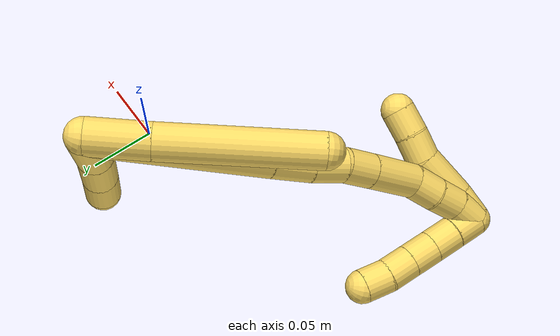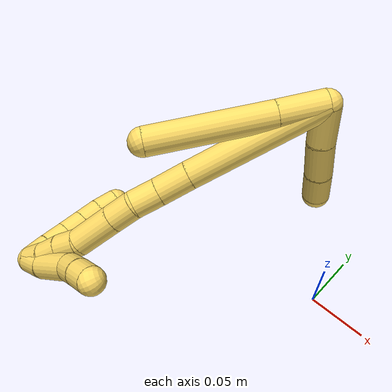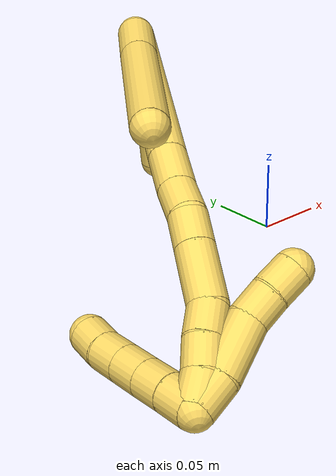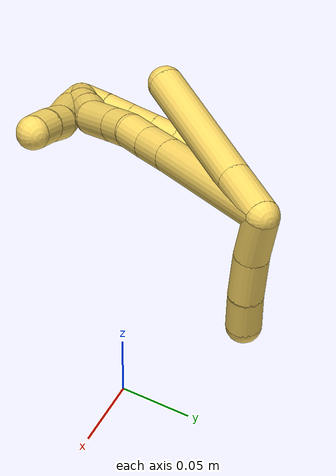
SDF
<sdf version="1.7">
 <world name="default">
  <model name="5">
   <static>0</static>
   <link name="5">
    <collision name="collision-cylinder-e_1_2_8">
     <pose>-0.001874 -0.004977 0.020131 0.242371 -0.090128 -0.010983</pose>
     <geometry><cylinder><radius>0.0125</radius><length>0.041643</length></cylinder></geometry>
     <surface>
      <friction><ode><mu>1.16</mu><mu2>1.16</mu2><slip1>0</slip1><slip2>0</slip2></ode></friction>
      <contact><ode><kp>1e+06</kp><kd>1</kd><max_vel>0</max_vel><min_depth>0.001</min_depth></ode></contact>
     </surface>
    </collision>
    <visual name="visual-cylinder-e_1_2_8">
     <pose>-0.001874 -0.004977 0.020131 0.242371 -0.090128 -0.010983</pose>
     <geometry><cylinder><radius>0.0125</radius><length>0.041643</length></cylinder></geometry>
     <material><ambient>1 0.858824 0.4 1</ambient></material>
    </visual>
    <collision name="collision-cylinder-e_2_8_6">
     <pose>-0.009902 -0.023683 0.092309 0.257896 -0.113838 -0.014777</pose>
     <geometry><cylinder><radius>0.0125</radius><length>0.108357</length></cylinder></geometry>
     <surface>
      <friction><ode><mu>1.16</mu><mu2>1.16</mu2><slip1>0</slip1><slip2>0</slip2></ode></friction>
      <contact><ode><kp>1e+06</kp><kd>1</kd><max_vel>0</max_vel><min_depth>0.001</min_depth></ode></contact>
     </surface>
    </collision>
    <visual name="visual-cylinder-e_2_8_6">
     <pose>-0.009902 -0.023683 0.092309 0.257896 -0.113838 -0.014777</pose>
     <geometry><cylinder><radius>0.0125</radius><length>0.108357</length></cylinder></geometry>
     <material><ambient>1 0.858824 0.4 1</ambient></material>
    </visual>
    <collision name="collision-cylinder-e_1_2_9">
     <pose>0.009062 0.01461 0.006668 -1.14262 0.513748 -0.334553</pose>
     <geometry><cylinder><radius>0.0125</radius><length>0.036879</length></cylinder></geometry>
     <surface>
      <friction><ode><mu>1.16</mu><mu2>1.16</mu2><slip1>0</slip1><slip2>0</slip2></ode></friction>
      <contact><ode><kp>1e+06</kp><kd>1</kd><max_vel>0</max_vel><min_depth>0.001</min_depth></ode></contact>
     </surface>
    </collision>
    <visual name="visual-cylinder-e_1_2_9">
     <pose>0.009062 0.01461 0.006668 -1.14262 0.513748 -0.334553</pose>
     <geometry><cylinder><radius>0.0125</radius><length>0.036879</length></cylinder></geometry>
     <material><ambient>1 0.858824 0.4 1</ambient></material>
    </visual>
    <collision name="collision-cylinder-e_2_9_10">
     <pose>0.02759 0.043234 0.018227 -1.23503 0.567692 -0.408562</pose>
     <geometry><cylinder><radius>0.0125</radius><length>0.035211</length></cylinder></geometry>
     <surface>
      <friction><ode><mu>1.16</mu><mu2>1.16</mu2><slip1>0</slip1><slip2>0</slip2></ode></friction>
      <contact><ode><kp>1e+06</kp><kd>1</kd><max_vel>0</max_vel><min_depth>0.001</min_depth></ode></contact>
     </surface>
    </collision>
    <visual name="visual-cylinder-e_2_9_10">
     <pose>0.02759 0.043234 0.018227 -1.23503 0.567692 -0.408562</pose>
     <geometry><cylinder><radius>0.0125</radius><length>0.035211</length></cylinder></geometry>
     <material><ambient>1 0.858824 0.4 1</ambient></material>
    </visual>
    <collision name="collision-cylinder-e_3_10_5">
     <pose>0.045341 0.067789 0.026994 -1.21839 0.635616 -0.451227</pose>
     <geometry><cylinder><radius>0.0125</radius><length>0.027909</length></cylinder></geometry>
     <surface>
      <friction><ode><mu>1.16</mu><mu2>1.16</mu2><slip1>0</slip1><slip2>0</slip2></ode></friction>
      <contact><ode><kp>1e+06</kp><kd>1</kd><max_vel>0</max_vel><min_depth>0.001</min_depth></ode></contact>
     </surface>
    </collision>
    <visual name="visual-cylinder-e_3_10_5">
     <pose>0.045341 0.067789 0.026994 -1.21839 0.635616 -0.451227</pose>
     <geometry><cylinder><radius>0.0125</radius><length>0.027909</length></cylinder></geometry>
     <material><ambient>1 0.858824 0.4 1</ambient></material>
    </visual>
    <collision name="collision-cylinder-e_1_2_11">
     <pose>0.000943 0.002361 0.062223 -0.037933 0.015141 -0.000287</pose>
     <geometry><cylinder><radius>0.0125</radius><length>0.124551</length></cylinder></geometry>
     <surface>
      <friction><ode><mu>1.16</mu><mu2>1.16</mu2><slip1>0</slip1><slip2>0</slip2></ode></friction>
      <contact><ode><kp>1e+06</kp><kd>1</kd><max_vel>0</max_vel><min_depth>0.001</min_depth></ode></contact>
     </surface>
    </collision>
    <visual name="visual-cylinder-e_1_2_11">
     <pose>0.000943 0.002361 0.062223 -0.037933 0.015141 -0.000287</pose>
     <geometry><cylinder><radius>0.0125</radius><length>0.124551</length></cylinder></geometry>
     <material><ambient>1 0.858824 0.4 1</ambient></material>
    </visual>
    <collision name="collision-cylinder-e_2_11_12">
     <pose>0.001967 0.005547 0.139119 -0.056105 0.005517 -0.000155</pose>
     <geometry><cylinder><radius>0.0125</radius><length>0.029391</length></cylinder></geometry>
     <surface>
      <friction><ode><mu>1.16</mu><mu2>1.16</mu2><slip1>0</slip1><slip2>0</slip2></ode></friction>
      <contact><ode><kp>1e+06</kp><kd>1</kd><max_vel>0</max_vel><min_depth>0.001</min_depth></ode></contact>
     </surface>
    </collision>
    <visual name="visual-cylinder-e_2_11_12">
     <pose>0.001967 0.005547 0.139119 -0.056105 0.005517 -0.000155</pose>
     <geometry><cylinder><radius>0.0125</radius><length>0.029391</length></cylinder></geometry>
     <material><ambient>1 0.858824 0.4 1</ambient></material>
    </visual>
    <collision name="collision-cylinder-e_3_12_13">
     <pose>0.000887 0.006631 0.165643 -0.021941 -0.097612 0.001072</pose>
     <geometry><cylinder><radius>0.0125</radius><length>0.023823</length></cylinder></geometry>
     <surface>
      <friction><ode><mu>1.16</mu><mu2>1.16</mu2><slip1>0</slip1><slip2>0</slip2></ode></friction>
      <contact><ode><kp>1e+06</kp><kd>1</kd><max_vel>0</max_vel><min_depth>0.001</min_depth></ode></contact>
     </surface>
    </collision>
    <visual name="visual-cylinder-e_3_12_13">
     <pose>0.000887 0.006631 0.165643 -0.021941 -0.097612 0.001072</pose>
     <geometry><cylinder><radius>0.0125</radius><length>0.023823</length></cylinder></geometry>
     <material><ambient>1 0.858824 0.4 1</ambient></material>
    </visual>
    <collision name="collision-cylinder-e_4_13_14">
     <pose>0.001037 0.00868 0.188509 -0.160975 0.116927 -0.009442</pose>
     <geometry><cylinder><radius>0.0125</radius><length>0.02247</length></cylinder></geometry>
     <surface>
      <friction><ode><mu>1.16</mu><mu2>1.16</mu2><slip1>0</slip1><slip2>0</slip2></ode></friction>
      <contact><ode><kp>1e+06</kp><kd>1</kd><max_vel>0</max_vel><min_depth>0.001</min_depth></ode></contact>
     </surface>
    </collision>
    <visual name="visual-cylinder-e_4_13_14">
     <pose>0.001037 0.00868 0.188509 -0.160975 0.116927 -0.009442</pose>
     <geometry><cylinder><radius>0.0125</radius><length>0.02247</length></cylinder></geometry>
     <material><ambient>1 0.858824 0.4 1</ambient></material>
    </visual>
    <collision name="collision-cylinder-e_5_14_15">
     <pose>0.004767 0.013811 0.218396 -0.175295 0.125588 -0.01105</pose>
     <geometry><cylinder><radius>0.0125</radius><length>0.038638</length></cylinder></geometry>
     <surface>
      <friction><ode><mu>1.16</mu><mu2>1.16</mu2><slip1>0</slip1><slip2>0</slip2></ode></friction>
      <contact><ode><kp>1e+06</kp><kd>1</kd><max_vel>0</max_vel><min_depth>0.001</min_depth></ode></contact>
     </surface>
    </collision>
    <visual name="visual-cylinder-e_5_14_15">
     <pose>0.004767 0.013811 0.218396 -0.175295 0.125588 -0.01105</pose>
     <geometry><cylinder><radius>0.0125</radius><length>0.038638</length></cylinder></geometry>
     <material><ambient>1 0.858824 0.4 1</ambient></material>
    </visual>
    <collision name="collision-cylinder-e_6_15_16">
     <pose>0.010861 0.016539 0.24696 0.063275 0.361683 0.011573</pose>
     <geometry><cylinder><radius>0.0125</radius><length>0.020765</length></cylinder></geometry>
     <surface>
      <friction><ode><mu>1.16</mu><mu2>1.16</mu2><slip1>0</slip1><slip2>0</slip2></ode></friction>
      <contact><ode><kp>1e+06</kp><kd>1</kd><max_vel>0</max_vel><min_depth>0.001</min_depth></ode></contact>
     </surface>
    </collision>
    <visual name="visual-cylinder-e_6_15_16">
     <pose>0.010861 0.016539 0.24696 0.063275 0.361683 0.011573</pose>
     <geometry><cylinder><radius>0.0125</radius><length>0.020765</length></cylinder></geometry>
     <material><ambient>1 0.858824 0.4 1</ambient></material>
    </visual>
    <collision name="collision-cylinder-e_7_16_17">
     <pose>0.017696 0.016429 0.26629 -0.052184 0.316499 -0.00833</pose>
     <geometry><cylinder><radius>0.0125</radius><length>0.020311</length></cylinder></geometry>
     <surface>
      <friction><ode><mu>1.16</mu><mu2>1.16</mu2><slip1>0</slip1><slip2>0</slip2></ode></friction>
      <contact><ode><kp>1e+06</kp><kd>1</kd><max_vel>0</max_vel><min_depth>0.001</min_depth></ode></contact>
     </surface>
    </collision>
    <visual name="visual-cylinder-e_7_16_17">
     <pose>0.017696 0.016429 0.26629 -0.052184 0.316499 -0.00833</pose>
     <geometry><cylinder><radius>0.0125</radius><length>0.020311</length></cylinder></geometry>
     <material><ambient>1 0.858824 0.4 1</ambient></material>
    </visual>
    <collision name="collision-cylinder-e_8_17_1">
     <pose>0.025666 0.01664 0.28472 0.033265 0.500356 0.008501</pose>
     <geometry><cylinder><radius>0.0125</radius><length>0.020051</length></cylinder></geometry>
     <surface>
      <friction><ode><mu>1.16</mu><mu2>1.16</mu2><slip1>0</slip1><slip2>0</slip2></ode></friction>
      <contact><ode><kp>1e+06</kp><kd>1</kd><max_vel>0</max_vel><min_depth>0.001</min_depth></ode></contact>
     </surface>
    </collision>
    <visual name="visual-cylinder-e_8_17_1">
     <pose>0.025666 0.01664 0.28472 0.033265 0.500356 0.008501</pose>
     <geometry><cylinder><radius>0.0125</radius><length>0.020051</length></cylinder></geometry>
     <material><ambient>1 0.858824 0.4 1</ambient></material>
    </visual>
    <collision name="collision-cylinder-e_1_1_18">
     <pose>0.036196 0.015118 0.285401 2.99123 0.608884 2.67101</pose>
     <geometry><cylinder><radius>0.0125</radius><length>0.02</length></cylinder></geometry>
     <surface>
      <friction><ode><mu>1.16</mu><mu2>1.16</mu2><slip1>0</slip1><slip2>0</slip2></ode></friction>
      <contact><ode><kp>1e+06</kp><kd>1</kd><max_vel>0</max_vel><min_depth>0.001</min_depth></ode></contact>
     </surface>
    </collision>
    <visual name="visual-cylinder-e_1_1_18">
     <pose>0.036196 0.015118 0.285401 2.99123 0.608884 2.67101</pose>
     <geometry><cylinder><radius>0.0125</radius><length>0.02</length></cylinder></geometry>
     <material><ambient>1 0.858824 0.4 1</ambient></material>
    </visual>
    <collision name="collision-cylinder-e_2_18_19">
     <pose>0.047792 0.013022 0.269247 3.03421 0.628237 2.81371</pose>
     <geometry><cylinder><radius>0.0125</radius><length>0.02</length></cylinder></geometry>
     <surface>
      <friction><ode><mu>1.16</mu><mu2>1.16</mu2><slip1>0</slip1><slip2>0</slip2></ode></friction>
      <contact><ode><kp>1e+06</kp><kd>1</kd><max_vel>0</max_vel><min_depth>0.001</min_depth></ode></contact>
     </surface>
    </collision>
    <visual name="visual-cylinder-e_2_18_19">
     <pose>0.047792 0.013022 0.269247 3.03421 0.628237 2.81371</pose>
     <geometry><cylinder><radius>0.0125</radius><length>0.02</length></cylinder></geometry>
     <material><ambient>1 0.858824 0.4 1</ambient></material>
    </visual>
    <collision name="collision-cylinder-e_3_19_20">
     <pose>0.059459 0.011205 0.253105 3.02475 0.617431 2.77882</pose>
     <geometry><cylinder><radius>0.0125</radius><length>0.02</length></cylinder></geometry>
     <surface>
      <friction><ode><mu>1.16</mu><mu2>1.16</mu2><slip1>0</slip1><slip2>0</slip2></ode></friction>
      <contact><ode><kp>1e+06</kp><kd>1</kd><max_vel>0</max_vel><min_depth>0.001</min_depth></ode></contact>
     </surface>
    </collision>
    <visual name="visual-cylinder-e_3_19_20">
     <pose>0.059459 0.011205 0.253105 3.02475 0.617431 2.77882</pose>
     <geometry><cylinder><radius>0.0125</radius><length>0.02</length></cylinder></geometry>
     <material><ambient>1 0.858824 0.4 1</ambient></material>
    </visual>
    <collision name="collision-cylinder-e_4_20_21">
     <pose>0.071038 0.009303 0.236909 3.02466 0.617464 2.77857</pose>
     <geometry><cylinder><radius>0.0125</radius><length>0.02</length></cylinder></geometry>
     <surface>
      <friction><ode><mu>1.16</mu><mu2>1.16</mu2><slip1>0</slip1><slip2>0</slip2></ode></friction>
      <contact><ode><kp>1e+06</kp><kd>1</kd><max_vel>0</max_vel><min_depth>0.001</min_depth></ode></contact>
     </surface>
    </collision>
    <visual name="visual-cylinder-e_4_20_21">
     <pose>0.071038 0.009303 0.236909 3.02466 0.617464 2.77857</pose>
     <geometry><cylinder><radius>0.0125</radius><length>0.02</length></cylinder></geometry>
     <material><ambient>1 0.858824 0.4 1</ambient></material>
    </visual>
    <collision name="collision-cylinder-e_5_21_4">
     <pose>0.081437 0.008116 0.21994 3.11506 0.479013 3.03303</pose>
     <geometry><cylinder><radius>0.0125</radius><length>0.02</length></cylinder></geometry>
     <surface>
      <friction><ode><mu>1.16</mu><mu2>1.16</mu2><slip1>0</slip1><slip2>0</slip2></ode></friction>
      <contact><ode><kp>1e+06</kp><kd>1</kd><max_vel>0</max_vel><min_depth>0.001</min_depth></ode></contact>
     </surface>
    </collision>
    <visual name="visual-cylinder-e_5_21_4">
     <pose>0.081437 0.008116 0.21994 3.11506 0.479013 3.03303</pose>
     <geometry><cylinder><radius>0.0125</radius><length>0.02</length></cylinder></geometry>
     <material><ambient>1 0.858824 0.4 1</ambient></material>
    </visual>
    <collision name="collision-cylinder-e_1_1_22">
     <pose>0.022976 0.020198 0.286183 -2.65772 -0.736077 2.00304</pose>
     <geometry><cylinder><radius>0.0125</radius><length>0.022342</length></cylinder></geometry>
     <surface>
      <friction><ode><mu>1.16</mu><mu2>1.16</mu2><slip1>0</slip1><slip2>0</slip2></ode></friction>
      <contact><ode><kp>1e+06</kp><kd>1</kd><max_vel>0</max_vel><min_depth>0.001</min_depth></ode></contact>
     </surface>
    </collision>
    <visual name="visual-cylinder-e_1_1_22">
     <pose>0.022976 0.020198 0.286183 -2.65772 -0.736077 2.00304</pose>
     <geometry><cylinder><radius>0.0125</radius><length>0.022342</length></cylinder></geometry>
     <material><ambient>1 0.858824 0.4 1</ambient></material>
    </visual>
    <collision name="collision-cylinder-e_2_22_23">
     <pose>0.004135 0.02758 0.264271 -2.90408 -0.647226 2.45802</pose>
     <geometry><cylinder><radius>0.0125</radius><length>0.037616</length></cylinder></geometry>
     <surface>
      <friction><ode><mu>1.16</mu><mu2>1.16</mu2><slip1>0</slip1><slip2>0</slip2></ode></friction>
      <contact><ode><kp>1e+06</kp><kd>1</kd><max_vel>0</max_vel><min_depth>0.001</min_depth></ode></contact>
     </surface>
    </collision>
    <visual name="visual-cylinder-e_2_22_23">
     <pose>0.004135 0.02758 0.264271 -2.90408 -0.647226 2.45802</pose>
     <geometry><cylinder><radius>0.0125</radius><length>0.037616</length></cylinder></geometry>
     <material><ambient>1 0.858824 0.4 1</ambient></material>
    </visual>
    <collision name="collision-cylinder-e_3_23_24">
     <pose>-0.015235 0.033331 0.244137 -2.76105 -0.930754 2.40912</pose>
     <geometry><cylinder><radius>0.0125</radius><length>0.020021</length></cylinder></geometry>
     <surface>
      <friction><ode><mu>1.16</mu><mu2>1.16</mu2><slip1>0</slip1><slip2>0</slip2></ode></friction>
      <contact><ode><kp>1e+06</kp><kd>1</kd><max_vel>0</max_vel><min_depth>0.001</min_depth></ode></contact>
     </surface>
    </collision>
    <visual name="visual-cylinder-e_3_23_24">
     <pose>-0.015235 0.033331 0.244137 -2.76105 -0.930754 2.40912</pose>
     <geometry><cylinder><radius>0.0125</radius><length>0.020021</length></cylinder></geometry>
     <material><ambient>1 0.858824 0.4 1</ambient></material>
    </visual>
    <collision name="collision-cylinder-e_4_24_3">
     <pose>-0.030912 0.038779 0.232992 -2.61833 -0.86956 2.09556</pose>
     <geometry><cylinder><radius>0.0125</radius><length>0.020021</length></cylinder></geometry>
     <surface>
      <friction><ode><mu>1.16</mu><mu2>1.16</mu2><slip1>0</slip1><slip2>0</slip2></ode></friction>
      <contact><ode><kp>1e+06</kp><kd>1</kd><max_vel>0</max_vel><min_depth>0.001</min_depth></ode></contact>
     </surface>
    </collision>
    <visual name="visual-cylinder-e_4_24_3">
     <pose>-0.030912 0.038779 0.232992 -2.61833 -0.86956 2.09556</pose>
     <geometry><cylinder><radius>0.0125</radius><length>0.020021</length></cylinder></geometry>
     <material><ambient>1 0.858824 0.4 1</ambient></material>
    </visual>
    <collision name="collision-sphere-3">
     <pose>-0.038561 0.042006 0.227398 0 -0 0</pose>
     <geometry><sphere><radius>0.0125</radius></sphere></geometry>
     <surface>
      <friction><ode><mu>1.16</mu><mu2>1.16</mu2><slip1>0</slip1><slip2>0</slip2></ode></friction>
      <contact><ode><kp>1e+06</kp><kd>1</kd><max_vel>0</max_vel><min_depth>0.001</min_depth></ode></contact>
     </surface>
    </collision>
    <visual name="visual-sphere-3">
     <pose>-0.038561 0.042006 0.227398 0 -0 0</pose>
     <geometry><sphere><radius>0.0125</radius></sphere></geometry>
     <material><ambient>1 0.858824 0.4 1</ambient></material>
    </visual>
    <collision name="collision-sphere-24">
     <pose>-0.023264 0.035552 0.238586 0 -0 0</pose>
     <geometry><sphere><radius>0.0125</radius></sphere></geometry>
     <surface>
      <friction><ode><mu>1.16</mu><mu2>1.16</mu2><slip1>0</slip1><slip2>0</slip2></ode></friction>
      <contact><ode><kp>1e+06</kp><kd>1</kd><max_vel>0</max_vel><min_depth>0.001</min_depth></ode></contact>
     </surface>
    </collision>
    <visual name="visual-sphere-24">
     <pose>-0.023264 0.035552 0.238586 0 -0 0</pose>
     <geometry><sphere><radius>0.0125</radius></sphere></geometry>
     <material><ambient>1 0.858824 0.4 1</ambient></material>
    </visual>
    <collision name="collision-sphere-23">
     <pose>-0.007206 0.031111 0.249688 0 -0 0</pose>
     <geometry><sphere><radius>0.0125</radius></sphere></geometry>
     <surface>
      <friction><ode><mu>1.16</mu><mu2>1.16</mu2><slip1>0</slip1><slip2>0</slip2></ode></friction>
      <contact><ode><kp>1e+06</kp><kd>1</kd><max_vel>0</max_vel><min_depth>0.001</min_depth></ode></contact>
     </surface>
    </collision>
    <visual name="visual-sphere-23">
     <pose>-0.007206 0.031111 0.249688 0 -0 0</pose>
     <geometry><sphere><radius>0.0125</radius></sphere></geometry>
     <material><ambient>1 0.858824 0.4 1</ambient></material>
    </visual>
    <collision name="collision-sphere-22">
     <pose>0.015476 0.02405 0.278854 0 -0 0</pose>
     <geometry><sphere><radius>0.0125</radius></sphere></geometry>
     <surface>
      <friction><ode><mu>1.16</mu><mu2>1.16</mu2><slip1>0</slip1><slip2>0</slip2></ode></friction>
      <contact><ode><kp>1e+06</kp><kd>1</kd><max_vel>0</max_vel><min_depth>0.001</min_depth></ode></contact>
     </surface>
    </collision>
    <visual name="visual-sphere-22">
     <pose>0.015476 0.02405 0.278854 0 -0 0</pose>
     <geometry><sphere><radius>0.0125</radius></sphere></geometry>
     <material><ambient>1 0.858824 0.4 1</ambient></material>
    </visual>
    <collision name="collision-sphere-4">
     <pose>0.086046 0.007881 0.211068 0 -0 0</pose>
     <geometry><sphere><radius>0.0125</radius></sphere></geometry>
     <surface>
      <friction><ode><mu>1.16</mu><mu2>1.16</mu2><slip1>0</slip1><slip2>0</slip2></ode></friction>
      <contact><ode><kp>1e+06</kp><kd>1</kd><max_vel>0</max_vel><min_depth>0.001</min_depth></ode></contact>
     </surface>
    </collision>
    <visual name="visual-sphere-4">
     <pose>0.086046 0.007881 0.211068 0 -0 0</pose>
     <geometry><sphere><radius>0.0125</radius></sphere></geometry>
     <material><ambient>1 0.858824 0.4 1</ambient></material>
    </visual>
    <collision name="collision-sphere-21">
     <pose>0.076828 0.008352 0.228811 0 -0 0</pose>
     <geometry><sphere><radius>0.0125</radius></sphere></geometry>
     <surface>
      <friction><ode><mu>1.16</mu><mu2>1.16</mu2><slip1>0</slip1><slip2>0</slip2></ode></friction>
      <contact><ode><kp>1e+06</kp><kd>1</kd><max_vel>0</max_vel><min_depth>0.001</min_depth></ode></contact>
     </surface>
    </collision>
    <visual name="visual-sphere-21">
     <pose>0.076828 0.008352 0.228811 0 -0 0</pose>
     <geometry><sphere><radius>0.0125</radius></sphere></geometry>
     <material><ambient>1 0.858824 0.4 1</ambient></material>
    </visual>
    <collision name="collision-sphere-20">
     <pose>0.065248 0.010254 0.245007 0 -0 0</pose>
     <geometry><sphere><radius>0.0125</radius></sphere></geometry>
     <surface>
      <friction><ode><mu>1.16</mu><mu2>1.16</mu2><slip1>0</slip1><slip2>0</slip2></ode></friction>
      <contact><ode><kp>1e+06</kp><kd>1</kd><max_vel>0</max_vel><min_depth>0.001</min_depth></ode></contact>
     </surface>
    </collision>
    <visual name="visual-sphere-20">
     <pose>0.065248 0.010254 0.245007 0 -0 0</pose>
     <geometry><sphere><radius>0.0125</radius></sphere></geometry>
     <material><ambient>1 0.858824 0.4 1</ambient></material>
    </visual>
    <collision name="collision-sphere-5">
     <pose>0.053626 0.078328 0.03087 0 -0 0</pose>
     <geometry><sphere><radius>0.0125</radius></sphere></geometry>
     <surface>
      <friction><ode><mu>1.16</mu><mu2>1.16</mu2><slip1>0</slip1><slip2>0</slip2></ode></friction>
      <contact><ode><kp>1e+06</kp><kd>1</kd><max_vel>0</max_vel><min_depth>0.001</min_depth></ode></contact>
     </surface>
    </collision>
    <visual name="visual-sphere-5">
     <pose>0.053626 0.078328 0.03087 0 -0 0</pose>
     <geometry><sphere><radius>0.0125</radius></sphere></geometry>
     <material><ambient>1 0.858824 0.4 1</ambient></material>
    </visual>
    <collision name="collision-sphere-10">
     <pose>0.037057 0.057249 0.023118 0 -0 0</pose>
     <geometry><sphere><radius>0.0125</radius></sphere></geometry>
     <surface>
      <friction><ode><mu>1.16</mu><mu2>1.16</mu2><slip1>0</slip1><slip2>0</slip2></ode></friction>
      <contact><ode><kp>1e+06</kp><kd>1</kd><max_vel>0</max_vel><min_depth>0.001</min_depth></ode></contact>
     </surface>
    </collision>
    <visual name="visual-sphere-10">
     <pose>0.037057 0.057249 0.023118 0 -0 0</pose>
     <geometry><sphere><radius>0.0125</radius></sphere></geometry>
     <material><ambient>1 0.858824 0.4 1</ambient></material>
    </visual>
    <collision name="collision-sphere-6">
     <pose>-0.016057 -0.037411 0.144357 0 -0 0</pose>
     <geometry><sphere><radius>0.0125</radius></sphere></geometry>
     <surface>
      <friction><ode><mu>1.16</mu><mu2>1.16</mu2><slip1>0</slip1><slip2>0</slip2></ode></friction>
      <contact><ode><kp>1e+06</kp><kd>1</kd><max_vel>0</max_vel><min_depth>0.001</min_depth></ode></contact>
     </surface>
    </collision>
    <visual name="visual-sphere-6">
     <pose>-0.016057 -0.037411 0.144357 0 -0 0</pose>
     <geometry><sphere><radius>0.0125</radius></sphere></geometry>
     <material><ambient>1 0.858824 0.4 1</ambient></material>
    </visual>
    <collision name="collision-sphere-9">
     <pose>0.018124 0.029219 0.013336 0 -0 0</pose>
     <geometry><sphere><radius>0.0125</radius></sphere></geometry>
     <surface>
      <friction><ode><mu>1.16</mu><mu2>1.16</mu2><slip1>0</slip1><slip2>0</slip2></ode></friction>
      <contact><ode><kp>1e+06</kp><kd>1</kd><max_vel>0</max_vel><min_depth>0.001</min_depth></ode></contact>
     </surface>
    </collision>
    <visual name="visual-sphere-9">
     <pose>0.018124 0.029219 0.013336 0 -0 0</pose>
     <geometry><sphere><radius>0.0125</radius></sphere></geometry>
     <material><ambient>1 0.858824 0.4 1</ambient></material>
    </visual>
    <collision name="collision-sphere-2">
     <geometry><sphere><radius>0.0125</radius></sphere></geometry>
     <surface>
      <friction><ode><mu>1.16</mu><mu2>1.16</mu2><slip1>0</slip1><slip2>0</slip2></ode></friction>
      <contact><ode><kp>1e+06</kp><kd>1</kd><max_vel>0</max_vel><min_depth>0.001</min_depth></ode></contact>
     </surface>
    </collision>
    <visual name="visual-sphere-2">
     <geometry><sphere><radius>0.0125</radius></sphere></geometry>
     <material><ambient>1 0.858824 0.4 1</ambient></material>
    </visual>
    <collision name="collision-sphere-19">
     <pose>0.05367 0.012155 0.261203 0 -0 0</pose>
     <geometry><sphere><radius>0.0125</radius></sphere></geometry>
     <surface>
      <friction><ode><mu>1.16</mu><mu2>1.16</mu2><slip1>0</slip1><slip2>0</slip2></ode></friction>
      <contact><ode><kp>1e+06</kp><kd>1</kd><max_vel>0</max_vel><min_depth>0.001</min_depth></ode></contact>
     </surface>
    </collision>
    <visual name="visual-sphere-19">
     <pose>0.05367 0.012155 0.261203 0 -0 0</pose>
     <geometry><sphere><radius>0.0125</radius></sphere></geometry>
     <material><ambient>1 0.858824 0.4 1</ambient></material>
    </visual>
    <collision name="collision-sphere-8">
     <pose>-0.003748 -0.009954 0.040261 0 -0 0</pose>
     <geometry><sphere><radius>0.0125</radius></sphere></geometry>
     <surface>
      <friction><ode><mu>1.16</mu><mu2>1.16</mu2><slip1>0</slip1><slip2>0</slip2></ode></friction>
      <contact><ode><kp>1e+06</kp><kd>1</kd><max_vel>0</max_vel><min_depth>0.001</min_depth></ode></contact>
     </surface>
    </collision>
    <visual name="visual-sphere-8">
     <pose>-0.003748 -0.009954 0.040261 0 -0 0</pose>
     <geometry><sphere><radius>0.0125</radius></sphere></geometry>
     <material><ambient>1 0.858824 0.4 1</ambient></material>
    </visual>
    <collision name="collision-sphere-11">
     <pose>0.001886 0.004723 0.124447 0 -0 0</pose>
     <geometry><sphere><radius>0.0125</radius></sphere></geometry>
     <surface>
      <friction><ode><mu>1.16</mu><mu2>1.16</mu2><slip1>0</slip1><slip2>0</slip2></ode></friction>
      <contact><ode><kp>1e+06</kp><kd>1</kd><max_vel>0</max_vel><min_depth>0.001</min_depth></ode></contact>
     </surface>
    </collision>
    <visual name="visual-sphere-11">
     <pose>0.001886 0.004723 0.124447 0 -0 0</pose>
     <geometry><sphere><radius>0.0125</radius></sphere></geometry>
     <material><ambient>1 0.858824 0.4 1</ambient></material>
    </visual>
    <collision name="collision-sphere-12">
     <pose>0.002048 0.006371 0.153791 0 -0 0</pose>
     <geometry><sphere><radius>0.0125</radius></sphere></geometry>
     <surface>
      <friction><ode><mu>1.16</mu><mu2>1.16</mu2><slip1>0</slip1><slip2>0</slip2></ode></friction>
      <contact><ode><kp>1e+06</kp><kd>1</kd><max_vel>0</max_vel><min_depth>0.001</min_depth></ode></contact>
     </surface>
    </collision>
    <visual name="visual-sphere-12">
     <pose>0.002048 0.006371 0.153791 0 -0 0</pose>
     <geometry><sphere><radius>0.0125</radius></sphere></geometry>
     <material><ambient>1 0.858824 0.4 1</ambient></material>
    </visual>
    <collision name="collision-sphere-13">
     <pose>-0.000274 0.006891 0.177495 0 -0 0</pose>
     <geometry><sphere><radius>0.0125</radius></sphere></geometry>
     <surface>
      <friction><ode><mu>1.16</mu><mu2>1.16</mu2><slip1>0</slip1><slip2>0</slip2></ode></friction>
      <contact><ode><kp>1e+06</kp><kd>1</kd><max_vel>0</max_vel><min_depth>0.001</min_depth></ode></contact>
     </surface>
    </collision>
    <visual name="visual-sphere-13">
     <pose>-0.000274 0.006891 0.177495 0 -0 0</pose>
     <geometry><sphere><radius>0.0125</radius></sphere></geometry>
     <material><ambient>1 0.858824 0.4 1</ambient></material>
    </visual>
    <collision name="collision-sphere-14">
     <pose>0.002348 0.010468 0.199523 0 -0 0</pose>
     <geometry><sphere><radius>0.0125</radius></sphere></geometry>
     <surface>
      <friction><ode><mu>1.16</mu><mu2>1.16</mu2><slip1>0</slip1><slip2>0</slip2></ode></friction>
      <contact><ode><kp>1e+06</kp><kd>1</kd><max_vel>0</max_vel><min_depth>0.001</min_depth></ode></contact>
     </surface>
    </collision>
    <visual name="visual-sphere-14">
     <pose>0.002348 0.010468 0.199523 0 -0 0</pose>
     <geometry><sphere><radius>0.0125</radius></sphere></geometry>
     <material><ambient>1 0.858824 0.4 1</ambient></material>
    </visual>
    <collision name="collision-sphere-15">
     <pose>0.007187 0.017153 0.237269 0 -0 0</pose>
     <geometry><sphere><radius>0.0125</radius></sphere></geometry>
     <surface>
      <friction><ode><mu>1.16</mu><mu2>1.16</mu2><slip1>0</slip1><slip2>0</slip2></ode></friction>
      <contact><ode><kp>1e+06</kp><kd>1</kd><max_vel>0</max_vel><min_depth>0.001</min_depth></ode></contact>
     </surface>
    </collision>
    <visual name="visual-sphere-15">
     <pose>0.007187 0.017153 0.237269 0 -0 0</pose>
     <geometry><sphere><radius>0.0125</radius></sphere></geometry>
     <material><ambient>1 0.858824 0.4 1</ambient></material>
    </visual>
    <collision name="collision-sphere-16">
     <pose>0.014535 0.015925 0.256652 0 -0 0</pose>
     <geometry><sphere><radius>0.0125</radius></sphere></geometry>
     <surface>
      <friction><ode><mu>1.16</mu><mu2>1.16</mu2><slip1>0</slip1><slip2>0</slip2></ode></friction>
      <contact><ode><kp>1e+06</kp><kd>1</kd><max_vel>0</max_vel><min_depth>0.001</min_depth></ode></contact>
     </surface>
    </collision>
    <visual name="visual-sphere-16">
     <pose>0.014535 0.015925 0.256652 0 -0 0</pose>
     <geometry><sphere><radius>0.0125</radius></sphere></geometry>
     <material><ambient>1 0.858824 0.4 1</ambient></material>
    </visual>
    <collision name="collision-sphere-17">
     <pose>0.020857 0.016932 0.275928 0 -0 0</pose>
     <geometry><sphere><radius>0.0125</radius></sphere></geometry>
     <surface>
      <friction><ode><mu>1.16</mu><mu2>1.16</mu2><slip1>0</slip1><slip2>0</slip2></ode></friction>
      <contact><ode><kp>1e+06</kp><kd>1</kd><max_vel>0</max_vel><min_depth>0.001</min_depth></ode></contact>
     </surface>
    </collision>
    <visual name="visual-sphere-17">
     <pose>0.020857 0.016932 0.275928 0 -0 0</pose>
     <geometry><sphere><radius>0.0125</radius></sphere></geometry>
     <material><ambient>1 0.858824 0.4 1</ambient></material>
    </visual>
    <collision name="collision-sphere-1">
     <pose>0.030476 0.016347 0.293511 0 -0 0</pose>
     <geometry><sphere><radius>0.0125</radius></sphere></geometry>
     <surface>
      <friction><ode><mu>1.16</mu><mu2>1.16</mu2><slip1>0</slip1><slip2>0</slip2></ode></friction>
      <contact><ode><kp>1e+06</kp><kd>1</kd><max_vel>0</max_vel><min_depth>0.001</min_depth></ode></contact>
     </surface>
    </collision>
    <visual name="visual-sphere-1">
     <pose>0.030476 0.016347 0.293511 0 -0 0</pose>
     <geometry><sphere><radius>0.0125</radius></sphere></geometry>
     <material><ambient>1 0.858824 0.4 1</ambient></material>
    </visual>
    <collision name="collision-sphere-18">
     <pose>0.041915 0.013889 0.277291 0 -0 0</pose>
     <geometry><sphere><radius>0.0125</radius></sphere></geometry>
     <surface>
      <friction><ode><mu>1.16</mu><mu2>1.16</mu2><slip1>0</slip1><slip2>0</slip2></ode></friction>
      <contact><ode><kp>1e+06</kp><kd>1</kd><max_vel>0</max_vel><min_depth>0.001</min_depth></ode></contact>
     </surface>
    </collision>
    <visual name="visual-sphere-18">
     <pose>0.041915 0.013889 0.277291 0 -0 0</pose>
     <geometry><sphere><radius>0.0125</radius></sphere></geometry>
     <material><ambient>1 0.858824 0.4 1</ambient></material>
    </visual>
    <inertial>
     <pose>0.011449 0.010136 0.144488 0 -0 0</pose>
     <mass>0.75</mass>
     <inertia>
      <ixx>0.000306</ixx>
      <ixy>0</ixy>
      <ixz>0</ixz>
      <iyy>0.000327</iyy>
      <iyz>0</iyz>
      <izz>3.8e-05</izz>
     </inertia>
    </inertial>
   </link>
   <pose>-0.068052 0.068222 0.147827 -2.05333 0.699919 2.27785</pose>
  </model>
 </world>
</sdf>
